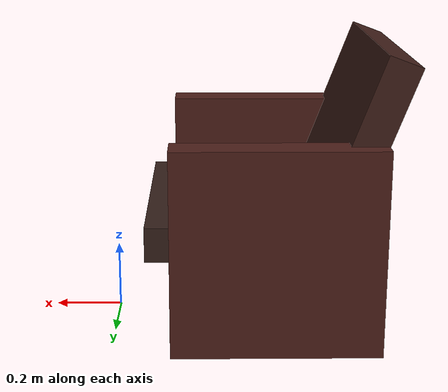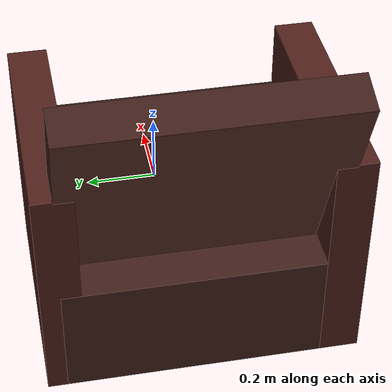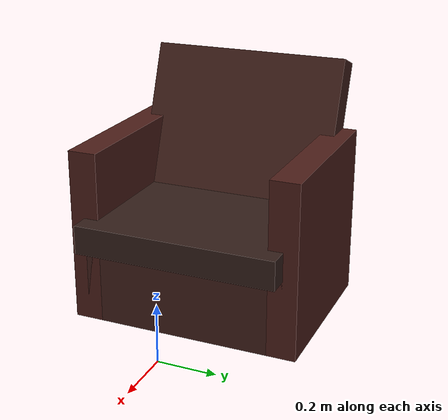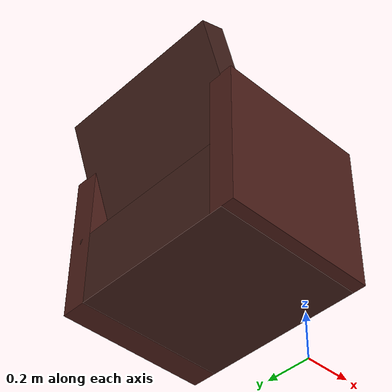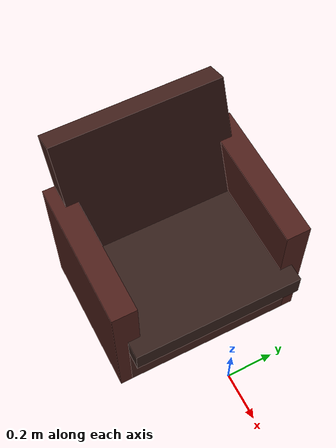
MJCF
<mujoco model="chair">
  <worldbody>
    <body name="chair" pos="-0.35 0 0.2" quat="1 0 0 0">
      <geom name="seat" type="box" pos="0 0 0.12" size=".25 .35 .05" mass="10." material="seat"/>
      <geom name="seat_base" type="box" pos="-0.12 0 -0.05" size=".30 .35 .15" mass="10." material="back"/>
      <geom name="back" type="box" pos="-0.35 0 0.35" size=".05 0.35 .3" mass="10." quat="0.984 0 -0.178 0" material="back"/>
      <geom name="chair_leg_1" type="box" pos="-0.12 0.35 0.1" size=".3 0.05 .3" mass="5." quat="1 0 0 0" material="legs"/>
      <geom name="chair_leg_2" type="box" pos="-0.12 -0.35 0.1" size=".3 0.05 .3" mass="5." quat="1 0 0 0" material="legs"/>
    </body>
  </worldbody>

  <asset>
    <material name="seat" rgba="0.2  0.12  0.1 1"/>
    <material name="back" rgba="0.25  0.12  0.1 1"/>
    <material name="legs" rgba="0.3  0.12  0.1 1"/>
  </asset>

  <keyframe>
  <key name="home"
  qpos="-0.0028
  -0.00087
   1.3
   1
   0.0033
   0.019
  -0.0029
   0.013
  -0.13
  -0.015
   0.0047
  -0.021
   0.14
   0.062
   0.0093
   0.011
  -0.014
  -0.027
   0.032
  -0.17
  -0.11
   0.035
   0.41
  -0.59
  -1.7
   0.5
  -0.58
  -1.7" />
  </keyframe>

</mujoco>
